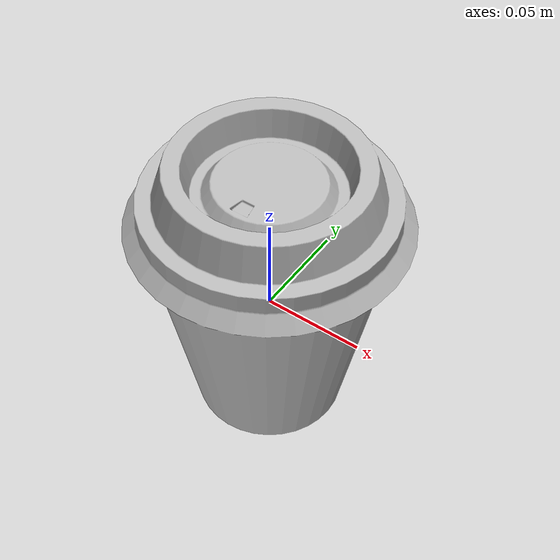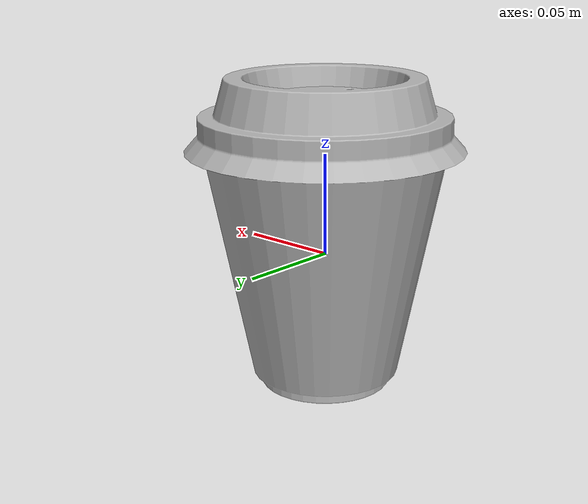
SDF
<?xml version="1.0"?>
<sdf version="1.11">
  <model name="milk_cup">
    <link name="body">
      <inertial auto="true" />
      <collision name="collision">
        <density>10.0</density>
        <geometry>
          <mesh optimization="convex_decomposition">
            <uri>models://milk_cup/mesh.obj</uri>
            <scale>0.06 0.06 0.06</scale>
          </mesh>
        </geometry>
      </collision>
      <visual name="visual">
        <geometry>
          <mesh>
            <uri>models://milk_cup/mesh.obj</uri>
            <scale>0.06 0.06 0.06</scale>
          </mesh>
        </geometry>
      </visual>
    </link>
  </model>
</sdf>
